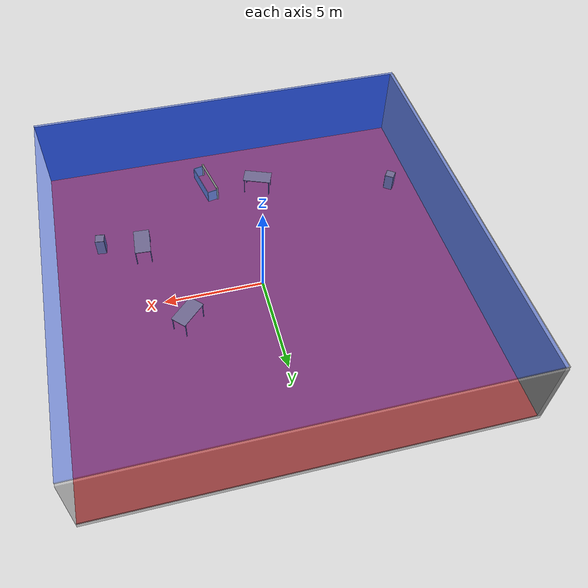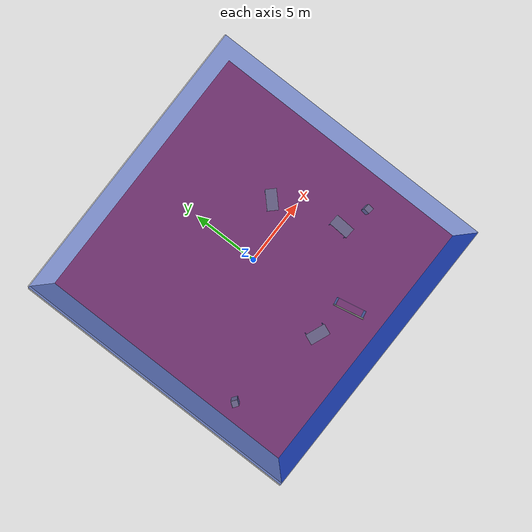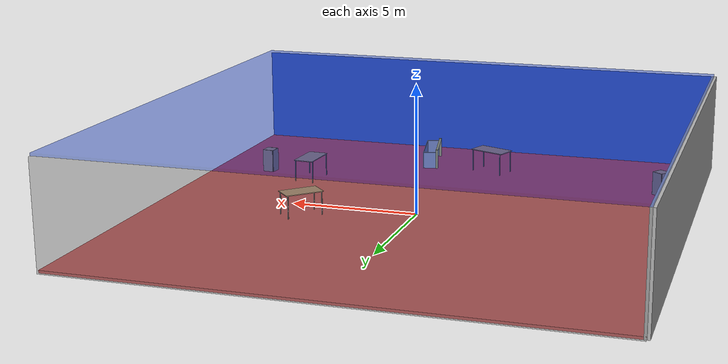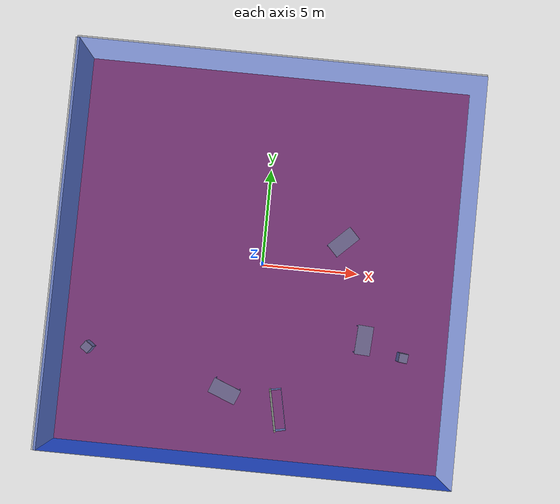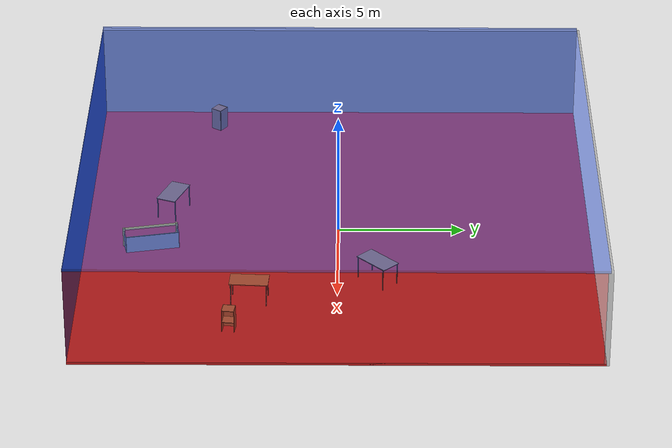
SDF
<sdf version="1.4">
 <world name="default">
  <physics type="ode">
   <max_step_size>0.001</max_step_size>
   <real_time_factor>1</real_time_factor>
   <real_time_update_rate>1000</real_time_update_rate>
   <gravity>0 0 -9.8</gravity>
  </physics>
  <scene><ambient>0.4 0.4 0.4 1</ambient><background>0.7 0.7 0.7 1</background><shadows>1</shadows></scene>
  <model name="Surrounding">
   <static>1</static>
   <link name="Ceiling">
    <collision name="Ceiling_Collision"><geometry><box><size>20 20 0.1</size></box></geometry></collision>
    <visual name="Ceiling_Visual">
     <geometry><box><size>20 20 0.1</size></box></geometry>
     <material>
      <script><uri>file://media/materials/scripts/gazebo.material</uri><name>Gazebo/BlueTransparent</name></script>
     </material>
    </visual>
    <pose>0 0 4.05 0 0 0</pose>
   </link>
   <link name="Wall_South">
    <collision name="Wall_South_Collision">
     <geometry><box><size>20 0 4</size></box></geometry>
     <pose>0 0 2 0 -0 0</pose>
    </collision>
    <visual name="Wall_South_Visual">
     <pose>0 0 2 0 -0 0</pose>
     <geometry><box><size>20 0 4</size></box></geometry>
     <material>
      <script><uri>file://media/materials/scripts/gazebo.material</uri><name>Gazebo/Blue</name></script>
     </material>
    </visual>
    <velocity_decay><linear>0</linear><angular>0</angular></velocity_decay>
    <pose>0 -10 0 0 -0 0</pose>
   </link>
   <link name="Wall_East">
    <collision name="Wall_21_Collision">
     <geometry><box><size>20 0 4</size></box></geometry>
     <pose>0 0 2 0 -0 0</pose>
    </collision>
    <visual name="Wall_21_Visual">
     <pose>0 0 2 0 -0 0</pose>
     <geometry><box><size>20 0 4</size></box></geometry>
     <material>
      <script><uri>file://media/materials/scripts/gazebo.material</uri><name>Gazebo/RedTransparent</name></script>
     </material>
    </visual>
    <velocity_decay><linear>0</linear><angular>0</angular></velocity_decay>
    <pose>10 0 0 0 -0 1.5708</pose>
   </link>
   <link name="Wall_North">
    <collision name="Wall_22_Collision">
     <geometry><box><size>20 0.2 4</size></box></geometry>
     <pose>0 0 2 0 -0 0</pose>
    </collision>
    <visual name="Wall_22_Visual">
     <pose>0 0 2 0 -0 0</pose>
     <geometry><box><size>20 0.2 4</size></box></geometry>
     <material>
      <script><uri>file://media/materials/scripts/gazebo.material</uri><name>Gazebo/GreyTransparent</name></script>
     </material>
    </visual>
    <velocity_decay><linear>0</linear><angular>0</angular></velocity_decay>
    <pose>0 10 0 0 -0 0</pose>
   </link>
   <link name="Wall_West">
    <collision name="Wall_23_Collision">
     <geometry><box><size>20 0.2 4</size></box></geometry>
     <pose>0 0 2 0 -0 0</pose>
    </collision>
    <visual name="Wall_23_Visual">
     <pose>0 0 2 0 -0 0</pose>
     <geometry><box><size>20 0.2 4</size></box></geometry>
     <material>
      <script><uri>file://media/materials/scripts/gazebo.material</uri><name>Gazebo/LightOff</name></script>
     </material>
    </visual>
    <velocity_decay><linear>0</linear><angular>0</angular></velocity_decay>
    <pose>-10 0 0 0 0 -1.5708</pose>
   </link>
   <link name="Ground_link">
    <collision name="collision">
     <pose>0 0 .05 0 -0 0</pose>
     <geometry><box><size>20 20 0.1</size></box></geometry>
    </collision>
    <visual name="visual">
     <pose>0 0 .05 0 -0 0</pose>
     <geometry><box><size>20 20 0.1</size></box></geometry>
     <material>
      <script><uri>file://media/materials/scripts/gazebo.material</uri><name>Gazebo/RedBright</name></script>
     </material>
    </visual>
   </link>
   <static>1</static>
  </model>
  <spherical_coordinates>
   <surface_model>EARTH_WGS84</surface_model>
   <latitude_deg>0</latitude_deg>
   <longitude_deg>0</longitude_deg>
   <elevation>0</elevation>
   <heading_deg>0</heading_deg>
  </spherical_coordinates>
  <light name="lightball_0" type="diffuse">
   <diffuse>0.8 0.8 0.8 1</diffuse>
   <specular>0.2 0.2 0.2 1</specular>
   <attenuation>
    <range>100</range>
    <constant>0.7</constant>
    <linear>0.01</linear>
    <quadratic>0.001</quadratic>
   </attenuation>
   <direction>-0.5 0.1 -0.9</direction>
   <pose>-6.94555048949 -4.68481730386 2.9320980461 0 0 0</pose>
  </light>
  <light name="lightball_1" type="diffuse">
   <diffuse>0.8 0.8 0.8 1</diffuse>
   <specular>0.2 0.2 0.2 1</specular>
   <attenuation>
    <range>100</range>
    <constant>0.7</constant>
    <linear>0.01</linear>
    <quadratic>0.001</quadratic>
   </attenuation>
   <direction>-0.5 0.1 -0.9</direction>
   <pose>-7.46443928921 -8.03212615355 3.3480136588 0 0 0</pose>
  </light>
  <light name="lightball_2" type="diffuse">
   <diffuse>0.8 0.8 0.8 1</diffuse>
   <specular>0.2 0.2 0.2 1</specular>
   <attenuation>
    <range>100</range>
    <constant>0.7</constant>
    <linear>0.01</linear>
    <quadratic>0.001</quadratic>
   </attenuation>
   <direction>-0.5 0.1 -0.9</direction>
   <pose>9.14199392617 -3.27674110688 3.40989651488 0 0 0</pose>
  </light>
  <light name="lightball_3" type="diffuse">
   <diffuse>0.8 0.8 0.8 1</diffuse>
   <specular>0.2 0.2 0.2 1</specular>
   <attenuation>
    <range>100</range>
    <constant>0.7</constant>
    <linear>0.01</linear>
    <quadratic>0.001</quadratic>
   </attenuation>
   <direction>-0.5 0.1 -0.9</direction>
   <pose>-1.12992204459 -2.4493486759 3.83363223187 0 0 0</pose>
  </light>
  <light name="lightball_4" type="diffuse">
   <diffuse>0.8 0.8 0.8 1</diffuse>
   <specular>0.2 0.2 0.2 1</specular>
   <attenuation>
    <range>100</range>
    <constant>0.7</constant>
    <linear>0.01</linear>
    <quadratic>0.001</quadratic>
   </attenuation>
   <direction>-0.5 0.1 -0.9</direction>
   <pose>-5.33758868754 -7.5505052992 1.41804474155 0 0 0</pose>
  </light>
  <light name="lightball_5" type="diffuse">
   <diffuse>0.8 0.8 0.8 1</diffuse>
   <specular>0.2 0.2 0.2 1</specular>
   <attenuation>
    <range>100</range>
    <constant>0.7</constant>
    <linear>0.01</linear>
    <quadratic>0.001</quadratic>
   </attenuation>
   <direction>-0.5 0.1 -0.9</direction>
   <pose>-1.49311175837 4.04872738455 3.45442789392 0 0 0</pose>
  </light>
  <light name="lightball_6" type="diffuse">
   <diffuse>0.8 0.8 0.8 1</diffuse>
   <specular>0.2 0.2 0.2 1</specular>
   <attenuation>
    <range>100</range>
    <constant>0.7</constant>
    <linear>0.01</linear>
    <quadratic>0.001</quadratic>
   </attenuation>
   <direction>-0.5 0.1 -0.9</direction>
   <pose>-7.09355697667 -8.11430694571 3.24263459573 0 0 0</pose>
  </light>
  <light name="lightball_7" type="diffuse">
   <diffuse>0.8 0.8 0.8 1</diffuse>
   <specular>0.2 0.2 0.2 1</specular>
   <attenuation>
    <range>100</range>
    <constant>0.7</constant>
    <linear>0.01</linear>
    <quadratic>0.001</quadratic>
   </attenuation>
   <direction>-0.5 0.1 -0.9</direction>
   <pose>7.25301289197 6.95730278402 0.684134495672 0 0 0</pose>
  </light>
  <light name="lightball_8" type="diffuse">
   <diffuse>0.8 0.8 0.8 1</diffuse>
   <specular>0.2 0.2 0.2 1</specular>
   <attenuation>
    <range>100</range>
    <constant>0.7</constant>
    <linear>0.01</linear>
    <quadratic>0.001</quadratic>
   </attenuation>
   <direction>-0.5 0.1 -0.9</direction>
   <pose>5.98571494312 -4.4377967619 2.07865075778 0 0 0</pose>
  </light>
  <light name="lightball_9" type="diffuse">
   <diffuse>0.8 0.8 0.8 1</diffuse>
   <specular>0.2 0.2 0.2 1</specular>
   <attenuation>
    <range>100</range>
    <constant>0.7</constant>
    <linear>0.01</linear>
    <quadratic>0.001</quadratic>
   </attenuation>
   <direction>-0.5 0.1 -0.9</direction>
   <pose>3.51866416331 3.85392658378 3.57647857124 0 0 0</pose>
  </light>
  <light name="lightball_10" type="diffuse">
   <diffuse>0.8 0.8 0.8 1</diffuse>
   <specular>0.2 0.2 0.2 1</specular>
   <attenuation>
    <range>100</range>
    <constant>0.7</constant>
    <linear>0.01</linear>
    <quadratic>0.001</quadratic>
   </attenuation>
   <direction>-0.5 0.1 -0.9</direction>
   <pose>4.82304373923 -7.12073957761 3.14429270631 0 0 0</pose>
  </light>
  <include><uri>model://cabinet</uri><pose>-8.53635633431 -5.08575615389 0 0 0 0.948543646884</pose></include>
  <include><uri>model://table</uri><pose>-1.29282937367 -6.63601501924 0 0 0 2.76588766262</pose></include>
  <include>
   <uri>model://robocup_3Dsim_goal</uri>
   <pose>1.24721455213 -7.41215061903 0 0 0 0.20350766785</pose>
  </include>
  <include><uri>model://table</uri><pose>5.55494204349 -3.36603404885 0 0 0 1.50979448116</pose></include>
  <include><uri>model://table</uri><pose>4.04018293459 1.54853251397 0 0 0 0.76845170955</pose></include>
  <include><uri>model://cabinet</uri><pose>7.64674171662 -4.07503694303 0 0 0 3.01989701604</pose></include>
 </world>
</sdf>

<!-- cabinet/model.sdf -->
<sdf version="1.5">
  <model name="cabinet">
    <static>true</static>
    <link name="cabinet_bottom_plate">
      <inertial>
        <pose>0 0 -1 0 0 0</pose>
        <inertia>
          <ixx>2.050000</ixx>
          <ixy>0</ixy>
          <ixz>0</ixz>
          <iyy>2.050000</iyy>
          <iyz>0</iyz>
          <izz>2.050000</izz>
        </inertia>
        <mass>25.000000</mass>
      </inertial>
      <collision name="cabinet_bottom_plate_geom">
        <pose>0 0 0.010000 0 0 0</pose>
        <geometry>
          <box>
            <size>0.450000 0.450000 0.020000</size>
          </box>
        </geometry>
      </collision>
      <visual name="cabinet_bottom_plate_geom_visual">
        <pose>0 0 0.010000 0 0 0</pose>
        <geometry>
          <box>
            <size>0.450000 0.450000 0.020000</size>
          </box>
        </geometry>
        <material>
          <script>
            <uri>model://media/materials/scripts/gazebo.material</uri>
            <name>Gazebo/Wood</name>
          </script>
        </material>
      </visual>
      <collision name="cabinet_bottom_plate_geom_cabinet_back_plate">
        <pose>0.235000 0 0.510000 0 0 0</pose>
        <geometry>
          <box>
            <size>0.020000 0.450000 1.020000</size>
          </box>
        </geometry>
      </collision>
      <visual name="cabinet_bottom_plate_geom_cabinet_back_plate_visual">
        <pose>0.235000 0 0.510000 0 0 0</pose>
        <geometry>
          <box>
            <size>0.020000 0.450000 1.020000</size>
          </box>
        </geometry>
        <material>
          <script>
            <uri>model://media/materials/scripts/gazebo.material</uri>
            <name>Gazebo/Wood</name>
          </script>
        </material>
      </visual>
      <collision name="cabinet_bottom_plate_geom_cabinet_left_plate">
        <pose>0 0.235000 0.510000 0 0 0</pose>
        <geometry>
          <box>
            <size>0.450000 0.020000 1.020000</size>
          </box>
        </geometry>
      </collision>
      <visual name="cabinet_bottom_plate_geom_cabinet_left_plate_visual">
        <pose>0 0.235000 0.510000 0 0 0</pose>
        <geometry>
          <box>
            <size>0.450000 0.020000 1.020000</size>
          </box>
        </geometry>
        <material>
          <script>
            <uri>model://media/materials/scripts/gazebo.material</uri>
            <name>Gazebo/Wood</name>
          </script>
        </material>
      </visual>
      <collision name="cabinet_bottom_plate_geom_cabinet_middle_plate">
        <pose>0 0 0.510000 0 0 0</pose>
        <geometry>
          <box>
            <size>0.450000 0.450000 0.020000</size>
          </box>
        </geometry>
      </collision>
      <visual name="cabinet_bottom_plate_geom_cabinet_middle_plate_visual">
        <pose>0 0 0.510000 0 0 0</pose>
        <geometry>
          <box>
            <size>0.450000 0.450000 0.020000</size>
          </box>
        </geometry>
        <material>
          <script>
            <uri>model://media/materials/scripts/gazebo.material</uri>
            <name>Gazebo/Wood</name>
          </script>
        </material>
      </visual>
      <collision name="cabinet_bottom_plate_geom_cabinet_right_plate">
        <pose>0 -0.235000 0.510000 0 0 0</pose>
        <geometry>
          <box>
            <size>0.450000 0.020000 1.020000</size>
          </box>
        </geometry>
      </collision>
      <visual name="cabinet_bottom_plate_geom_cabinet_right_plate_visual">
        <pose>0 -0.235000 0.510000 0 0 0</pose>
        <geometry>
          <box>
            <size>0.450000 0.020000 1.020000</size>
          </box>
        </geometry>
        <material>
          <script>
            <uri>model://media/materials/scripts/gazebo.material</uri>
            <name>Gazebo/Wood</name>
          </script>
        </material>
      </visual>
      <collision name="cabinet_bottom_plate_geom_cabinet_top_plate">
        <pose>0 0 1.010000 0 0 0</pose>
        <geometry>
          <box>
            <size>0.450000 0.450000 0.020000</size>
          </box>
        </geometry>
      </collision>
      <visual name="cabinet_bottom_plate_geom_cabinet_top_plate_visual">
        <pose>0 0 1.010000 0 0 0</pose>
        <geometry>
          <box>
            <size>0.450000 0.450000 0.020000</size>
          </box>
        </geometry>
        <material>
          <script>
            <uri>model://media/materials/scripts/gazebo.material</uri>
            <name>Gazebo/Wood</name>
          </script>
        </material>
      </visual>
    </link>
  </model>
</sdf>

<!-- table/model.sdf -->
<sdf version="1.5">
  <model name="table">
    <static>true</static>
    <link name="link">
      <collision name="surface">
        <pose>0 0 1.0 0 0 0</pose>
        <geometry>
          <box>
            <size>1.5 0.8 0.03</size>
          </box>
        </geometry>
        <surface>
          <friction>
            <ode>
              <mu>0.6</mu>
              <mu2>0.6</mu2>
            </ode>
          </friction>
        </surface>
      </collision>
      <visual name="visual1">
        <pose>0 0 1.0 0 0 0</pose>
        <geometry>
          <box>
            <size>1.5 0.8 0.03</size>
          </box>
        </geometry>
        <material>
          <script>
            <uri>model://media/materials/scripts/gazebo.material</uri>
            <name>Gazebo/Wood</name>
          </script>
        </material>
      </visual>
      <collision name="front_left_leg">
        <pose>0.68 0.38 0.5 0 0 0</pose>
        <geometry>
          <cylinder>
            <radius>0.02</radius>
            <length>1.0</length>
          </cylinder>
        </geometry>
      </collision>
      <visual name="front_left_leg">
        <pose>0.68 0.38 0.5 0 0 0</pose>
        <geometry>
          <cylinder>
            <radius>0.02</radius>
            <length>1.0</length>
          </cylinder>
        </geometry>
        <material>
          <script>
            <uri>model://media/materials/scripts/gazebo.material</uri>
            <name>Gazebo/Grey</name>
          </script>
        </material>
      </visual>
      <collision name="front_right_leg">
        <pose>0.68 -0.38 0.5 0 0 0</pose>
        <geometry>
          <cylinder>
            <radius>0.02</radius>
            <length>1.0</length>
          </cylinder>
        </geometry>
      </collision>
      <visual name="front_right_leg">
        <pose>0.68 -0.38 0.5 0 0 0</pose>
        <geometry>
          <cylinder>
            <radius>0.02</radius>
            <length>1.0</length>
          </cylinder>
        </geometry>
        <material>
          <script>
            <uri>model://media/materials/scripts/gazebo.material</uri>
            <name>Gazebo/Grey</name>
          </script>
        </material>
      </visual>
      <collision name="back_right_leg">
        <pose>-0.68 -0.38 0.5 0 0 0</pose>
        <geometry>
          <cylinder>
            <radius>0.02</radius>
            <length>1.0</length>
          </cylinder>
        </geometry>
      </collision>
      <visual name="back_right_leg">
        <pose>-0.68 -0.38 0.5 0 0 0</pose>
        <geometry>
          <cylinder>
            <radius>0.02</radius>
            <length>1.0</length>
          </cylinder>
        </geometry>
        <material>
          <script>
            <uri>model://media/materials/scripts/gazebo.material</uri>
            <name>Gazebo/Grey</name>
          </script>
        </material>
      </visual>
      <collision name="back_left_leg">
        <pose>-0.68 0.38 0.5 0 0 0</pose>
        <geometry>
          <cylinder>
            <radius>0.02</radius>
            <length>1.0</length>
          </cylinder>
        </geometry>
      </collision>
      <visual name="back_left_leg">
        <pose>-0.68 0.38 0.5 0 0 0</pose>
        <geometry>
          <cylinder>
            <radius>0.02</radius>
            <length>1.0</length>
          </cylinder>
        </geometry>
        <material>
          <script>
            <uri>model://media/materials/scripts/gazebo.material</uri>
            <name>Gazebo/Grey</name>
          </script>
        </material>
      </visual>
    </link>
  </model>
</sdf>

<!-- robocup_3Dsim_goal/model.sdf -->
<sdf version="1.5">
  <model name="robocup_3d_goal">
    <static>true</static>
    <link name="left_post">
      <pose>0 1.05 0.45 0 0 0</pose>
      <collision name="collision">
        <geometry>
          <cylinder>
            <radius>0.05</radius>
            <length>0.9</length>
          </cylinder>
        </geometry>
      </collision>
      <visual name="visual">
        <geometry>
          <cylinder>
            <radius>0.05</radius>
            <length>0.9</length>
          </cylinder>
        </geometry>
        <material>
          <script>
            <uri>file://media/materials/scripts/gazebo.material</uri>
            <name>Gazebo/ZincYellow</name>
          </script>
        </material>
      </visual>
    </link>
    <link name="left_support_horiz_lower">
      <pose>0.30 1.05 0.01 0 0 0</pose>
      <collision name="collision">
        <geometry>
          <box>
            <size>0.50 0.02 0.02</size>
          </box>
        </geometry>
      </collision>
      <visual name="visual">
        <geometry>
          <box>
            <size>0.50 0.02 0.02</size>
          </box>
        </geometry>
        <material>
          <script>
            <uri>file://media/materials/scripts/gazebo.material</uri>
            <name>Gazebo/White</name>
          </script>
        </material>
      </visual>
    </link>
    <link name="left_support_horiz_upper">
      <pose>0.30 1.05 0.79 0 0 0</pose>
      <collision name="collision">
        <geometry>
          <box>
            <size>0.50 0.02 0.02</size>
          </box>
        </geometry>
      </collision>
      <visual name="visual">
        <geometry>
          <box>
            <size>0.50 0.02 0.02</size>
          </box>
        </geometry>
        <material>
          <script>
            <uri>file://media/materials/scripts/gazebo.material</uri>
            <name>Gazebo/White</name>
          </script>
        </material>
      </visual>
    </link>
    <link name="left_support_vertical">
      <pose>0.56 1.05 0.4 0 1.5708 0</pose>
      <collision name="collision">
        <geometry>
          <box>
            <size>0.80 0.02 0.02</size>
          </box>
        </geometry>
      </collision>
      <visual name="visual">
        <geometry>
          <box>
            <size>0.80 0.02 0.02</size>
          </box>
        </geometry>
        <material>
          <script>
            <uri>file://media/materials/scripts/gazebo.material</uri>
            <name>Gazebo/White</name>
          </script>
        </material>
      </visual>
    </link>
    <link name="right_support_horiz_lower">
      <pose>0.30 -1.05 0.01 0 0 0</pose>
      <collision name="collision">
        <geometry>
          <box>
            <size>0.50 0.02 0.02</size>
          </box>
        </geometry>
      </collision>
      <visual name="visual">
        <geometry>
          <box>
            <size>0.50 0.02 0.02</size>
          </box>
        </geometry>
        <material>
          <script>
            <uri>file://media/materials/scripts/gazebo.material</uri>
            <name>Gazebo/White</name>
          </script>
        </material>
      </visual>
    </link>
    <link name="right_support_horiz_upper">
      <pose>0.30 -1.05 0.79 0 0 0</pose>
      <collision name="collision">
        <geometry>
          <box>
            <size>0.50 0.02 0.02</size>
          </box>
        </geometry>
      </collision>
      <visual name="visual">
        <geometry>
          <box>
            <size>0.50 0.02 0.02</size>
          </box>
        </geometry>
        <material>
          <script>
            <uri>file://media/materials/scripts/gazebo.material</uri>
            <name>Gazebo/White</name>
          </script>
        </material>
      </visual>
    </link>
    <link name="right_support_vertical">
      <pose>0.56 -1.05 0.4 0 1.5708 0</pose>
      <collision name="collision">
        <geometry>
          <box>
            <size>0.80 0.02 0.02</size>
          </box>
        </geometry>
      </collision>
      <visual name="visual">
        <geometry>
          <box>
            <size>0.80 0.02 0.02</size>
          </box>
        </geometry>
        <material>
          <script>
            <uri>file://media/materials/scripts/gazebo.material</uri>
            <name>Gazebo/White</name>
          </script>
        </material>
      </visual>
    </link>
    <link name="center_support_horiz_lower">
      <pose>0.56 0 0.01 0 1.5708 0</pose>
      <collision name="collision">
        <geometry>
          <box>
            <size>0.02 2.08 0.02</size>
          </box>
        </geometry>
      </collision>
      <visual name="visual">
        <geometry>
          <box>
            <size>0.02 2.08 0.02</size>
          </box>
        </geometry>
        <material>
          <script>
            <uri>file://media/materials/scripts/gazebo.material</uri>
            <name>Gazebo/White</name>
          </script>
        </material>
      </visual>
    </link>
    <link name="center_support_horiz_upper">
      <pose>0.56 0 0.79 0 1.5708 0</pose>
      <collision name="collision">
        <geometry>
          <box>
            <size>0.02 2.08 0.02</size>
          </box>
        </geometry>
      </collision>
      <visual name="visual">
        <geometry>
          <box>
            <size>0.02 2.08 0.02</size>
          </box>
        </geometry>
        <material>
          <script>
            <uri>file://media/materials/scripts/gazebo.material</uri>
            <name>Gazebo/White</name>
          </script>
        </material>
      </visual>
    </link>
    <link name="right_post">
      <pose>0 -1.05 0.45 0 0 0</pose>
      <collision name="collision">
        <geometry>
          <cylinder>
            <radius>0.05</radius>
            <length>0.9</length>
          </cylinder>
        </geometry>
      </collision>
      <visual name="visual">
        <geometry>
          <cylinder>
            <radius>0.05</radius>
            <length>0.9</length>
          </cylinder>
        </geometry>
        <material>
          <script>
            <uri>file://media/materials/scripts/gazebo.material</uri>
            <name>Gazebo/ZincYellow</name>
          </script>
        </material>
      </visual>
    </link>
    <link name="crossbar">
      <pose>0 0 0.85 1.57 1.57 0</pose>
      <collision name="collision">
        <geometry>
          <cylinder>
            <radius>0.05</radius>
            <length>2.0</length>
          </cylinder>
        </geometry>
      </collision>
      <visual name="visual">
        <geometry>
          <cylinder>
            <radius>0.05</radius>
            <length>2.0</length>
          </cylinder>
        </geometry>
        <material>
          <script>
            <uri>file://media/materials/scripts/gazebo.material</uri>
            <name>Gazebo/ZincYellow</name>
          </script>
        </material>
      </visual>
    </link>
    <link name="center_net">
      <pose>0.56 0 0.40 0 0 0</pose>
      <collision name="collision">
        <geometry>
          <box>
            <size>0.01 2.1 0.80</size>
          </box>
        </geometry>
      </collision>
      <visual name="visual">
        <geometry>
          <box>
            <size>0.01 2.1 0.80</size>
          </box>
        </geometry>
        <material>
          <script>
            <uri>model://../model_source/models/robocup09_spl_field/materials/scripts/</uri>
            <uri>model://../model_source/models/robocup09_spl_field/materials/textures/</uri>
            <name>RoboCup/Net</name>
          </script>
        </material>
      </visual>
    </link>
    <link name="left_net">
      <pose>0.30 1.05 0.40 0 0 0</pose>
      <collision name="collision">
        <geometry>
          <box>
            <size>0.50 0.01 0.76</size>
          </box>
        </geometry>
      </collision>
      <visual name="visual">
        <geometry>
          <box>
            <size>0.50 0.01 0.76</size>
          </box>
        </geometry>
        <material>
          <script>
            <uri>model://../model_source/models/robocup09_spl_field/materials/scripts/</uri>
            <uri>model://../model_source/models/robocup09_spl_field/materials/textures/</uri>
            <name>RoboCup/Net</name>
          </script>
        </material>
      </visual>
    </link>
    <link name="right_net">
      <pose>0.30 -1.05 0.40 0 0 0</pose>
      <collision name="collision">
        <geometry>
          <box>
            <size>0.50 0.01 0.76</size>
          </box>
        </geometry>
      </collision>
      <visual name="visual">
        <geometry>
          <box>
            <size>0.50 0.01 0.76</size>
          </box>
        </geometry>
        <material>
          <script>
            <uri>model://../model_source/models/robocup09_spl_field/materials/scripts/</uri>
            <uri>model://../model_source/models/robocup09_spl_field/materials/textures/</uri>
            <name>RoboCup/Net</name>
          </script>
        </material>
      </visual>
    </link>
  </model>
</sdf>
